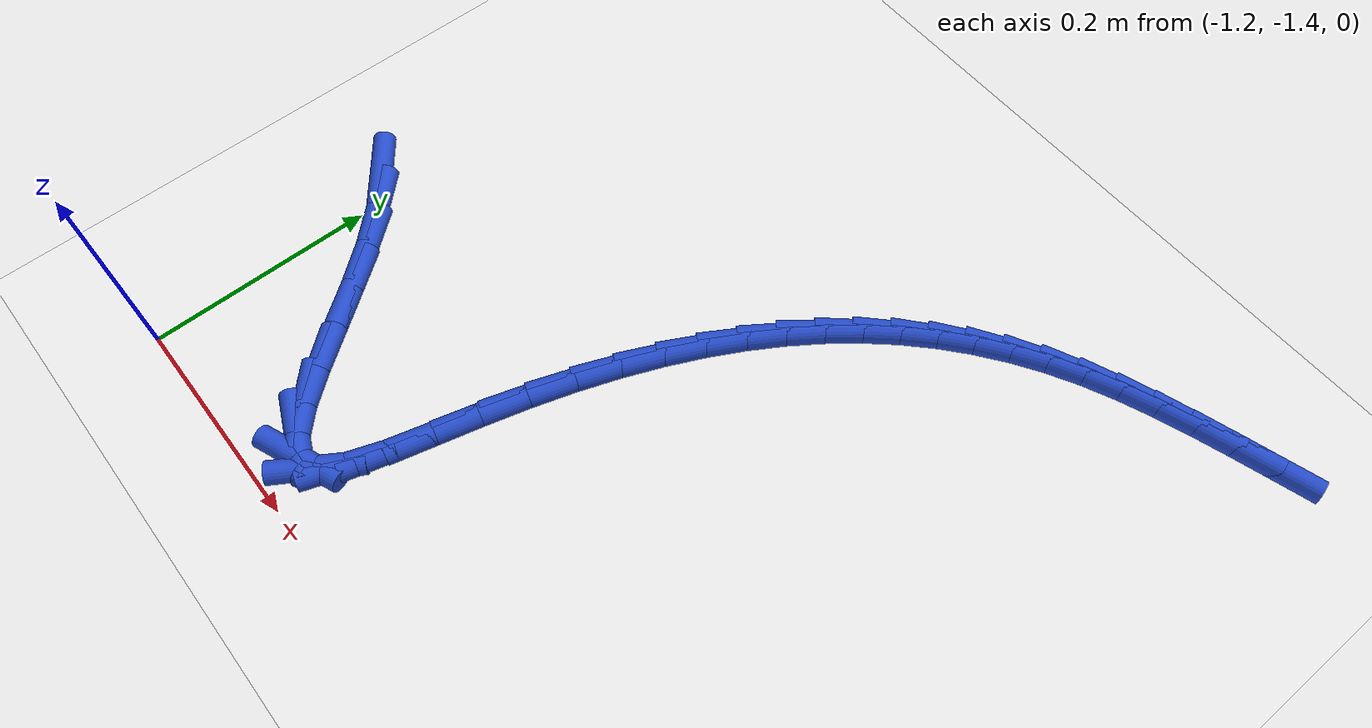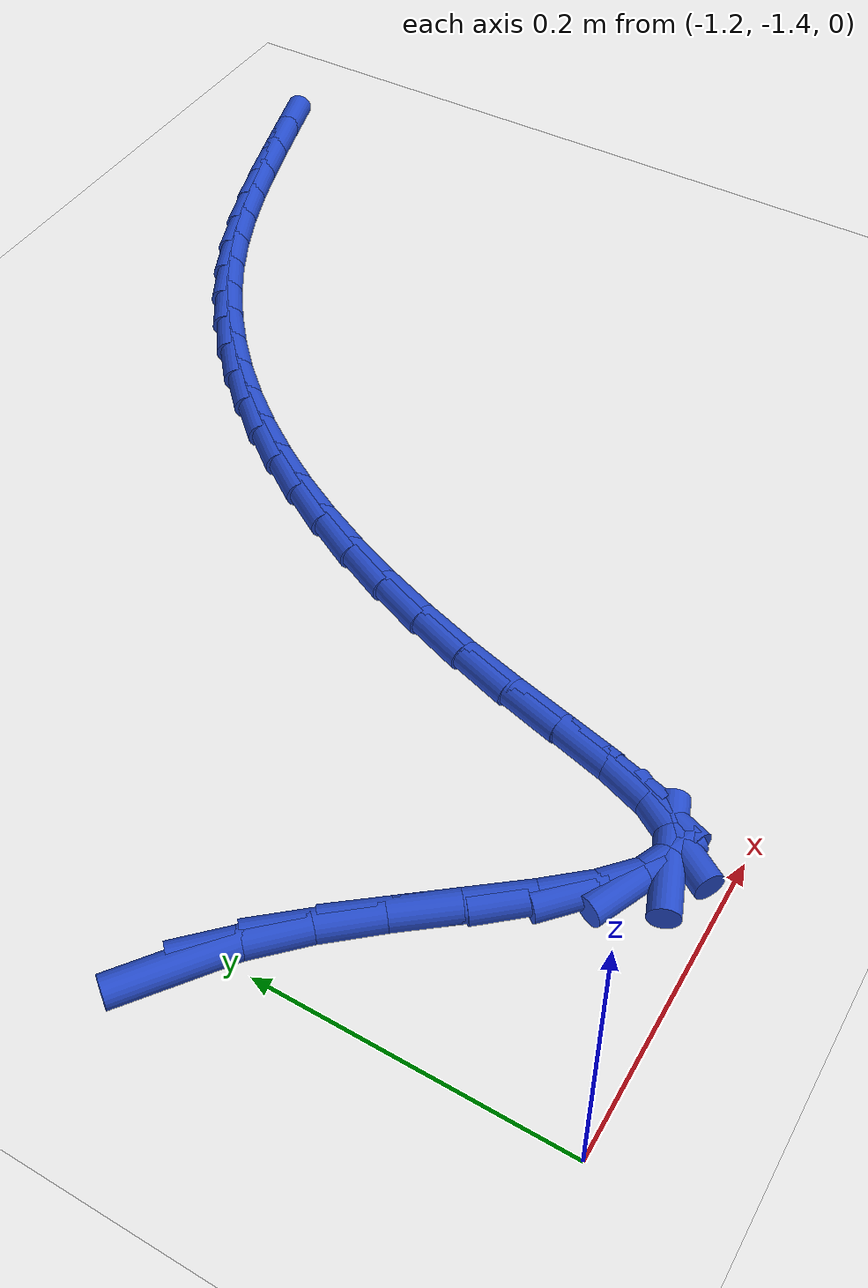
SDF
<sdf version="1.6">
 <world name="default">
  <model name="ground_plane">
   <static>1</static>
   <link name="link">
    <collision name="collision">
     <geometry><plane><normal>0 0 1</normal><size>100 100</size></plane></geometry>
     <surface><friction><ode><mu>100</mu><mu2>50</mu2></ode></friction></surface>
    </collision>
    <visual name="visual">
     <cast_shadows>0</cast_shadows>
     <geometry><plane><normal>0 0 1</normal><size>100 100</size></plane></geometry>
     <material>
      <script><uri>file://media/materials/scripts/gazebo.material</uri><name>Gazebo/WhiteGlow</name></script>
     </material>
    </visual>
   </link>
  </model>
  <model name="line">
   <link name="link_206">
    <pose>-1.220173806969599 -1.1647429994126597 0.01 0 1.57 -0.6427984619645438</pose>
    <collision name="collision">
     <geometry><cylinder><radius>0.01</radius><length>0.08</length></cylinder></geometry>
    </collision>
    <visual name="visual">
     <material>
      <script><name>Gazebo/Blue</name><uri>file://media/materials/scripts/gazebo.material</uri></script>
     </material>
     <geometry><cylinder><radius>0.01</radius><length>0.08</length></cylinder></geometry>
    </visual>
   </link>
   <link name="link_207">
    <pose>-1.1905169455982685 -1.1869531027422062 0.01 0 1.57 -0.7818668141543124</pose>
    <collision name="collision">
     <geometry><cylinder><radius>0.01</radius><length>0.08</length></cylinder></geometry>
    </collision>
    <visual name="visual">
     <material>
      <script><name>Gazebo/Blue</name><uri>file://media/materials/scripts/gazebo.material</uri></script>
     </material>
     <geometry><cylinder><radius>0.01</radius><length>0.08</length></cylinder></geometry>
    </visual>
   </link>
   <link name="link_208">
    <pose>-1.161815393976633 -1.2154526564441832 0.01 0 1.57 -0.8630017104701355</pose>
    <collision name="collision">
     <geometry><cylinder><radius>0.01</radius><length>0.08</length></cylinder></geometry>
    </collision>
    <visual name="visual">
     <material>
      <script><name>Gazebo/Blue</name><uri>file://media/materials/scripts/gazebo.material</uri></script>
     </material>
     <geometry><cylinder><radius>0.01</radius><length>0.08</length></cylinder></geometry>
    </visual>
   </link>
   <link name="link_209">
    <pose>-1.1343056274327203 -1.2476014556061399 0.01 0 1.57 -0.9013832921998496</pose>
    <collision name="collision">
     <geometry><cylinder><radius>0.01</radius><length>0.08</length></cylinder></geometry>
    </collision>
    <visual name="visual">
     <material>
      <script><name>Gazebo/Blue</name><uri>file://media/materials/scripts/gazebo.material</uri></script>
     </material>
     <geometry><cylinder><radius>0.01</radius><length>0.08</length></cylinder></geometry>
    </visual>
   </link>
   <link name="link_210">
    <pose>-1.1082363518498668 -1.2805463574093836 0.01 0 1.57 -0.902608137585877</pose>
    <collision name="collision">
     <geometry><cylinder><radius>0.01</radius><length>0.08</length></cylinder></geometry>
    </collision>
    <visual name="visual">
     <material>
      <script><name>Gazebo/Blue</name><uri>file://media/materials/scripts/gazebo.material</uri></script>
     </material>
     <geometry><cylinder><radius>0.01</radius><length>0.08</length></cylinder></geometry>
    </visual>
   </link>
   <link name="link_211">
    <pose>-1.0838562731114036 -1.3114342190352248 0.01 0 1.57 -0.858286432172695</pose>
    <collision name="collision">
     <geometry><cylinder><radius>0.01</radius><length>0.08</length></cylinder></geometry>
    </collision>
    <visual name="visual">
     <material>
      <script><name>Gazebo/Blue</name><uri>file://media/materials/scripts/gazebo.material</uri></script>
     </material>
     <geometry><cylinder><radius>0.01</radius><length>0.08</length></cylinder></geometry>
    </visual>
   </link>
   <link name="link_212">
    <pose>-1.0614140971006663 -1.3374118976649711 0.01 0 1.57 -0.7323878578274264</pose>
    <collision name="collision">
     <geometry><cylinder><radius>0.01</radius><length>0.08</length></cylinder></geometry>
    </collision>
    <visual name="visual">
     <material>
      <script><name>Gazebo/Blue</name><uri>file://media/materials/scripts/gazebo.material</uri></script>
     </material>
     <geometry><cylinder><radius>0.01</radius><length>0.08</length></cylinder></geometry>
    </visual>
   </link>
   <link name="link_213">
    <pose>-1.0411585297009873 -1.3556262504799323 0.01 0 1.57 -0.40302396959657827</pose>
    <collision name="collision">
     <geometry><cylinder><radius>0.01</radius><length>0.08</length></cylinder></geometry>
    </collision>
    <visual name="visual">
     <material>
      <script><name>Gazebo/Blue</name><uri>file://media/materials/scripts/gazebo.material</uri></script>
     </material>
     <geometry><cylinder><radius>0.01</radius><length>0.08</length></cylinder></geometry>
    </visual>
   </link>
   <link name="link_214">
    <pose>-1.0233382767957016 -1.3632241346614167 0.01 0 1.57 0.3676178336418724</pose>
    <collision name="collision">
     <geometry><cylinder><radius>0.01</radius><length>0.08</length></cylinder></geometry>
    </collision>
    <visual name="visual">
     <material>
      <script><name>Gazebo/Blue</name><uri>file://media/materials/scripts/gazebo.material</uri></script>
     </material>
     <geometry><cylinder><radius>0.01</radius><length>0.08</length></cylinder></geometry>
    </visual>
   </link>
   <link name="link_215">
    <pose>-1.0081953916342898 -1.357392228712328 0.01 0 1.57 0.9997028247715916</pose>
    <collision name="collision">
     <geometry><cylinder><radius>0.01</radius><length>0.08</length></cylinder></geometry>
    </collision>
    <visual name="visual">
     <material>
      <script><name>Gazebo/Blue</name><uri>file://media/materials/scripts/gazebo.material</uri></script>
     </material>
     <geometry><cylinder><radius>0.01</radius><length>0.08</length></cylinder></geometry>
    </visual>
   </link>
   <link name="link_216">
    <pose>-0.9955674642654324 -1.3377382461043865 0.01 0 1.57 1.2231740796199226</pose>
    <collision name="collision">
     <geometry><cylinder><radius>0.01</radius><length>0.08</length></cylinder></geometry>
    </collision>
    <visual name="visual">
     <material>
      <script><name>Gazebo/Blue</name><uri>file://media/materials/scripts/gazebo.material</uri></script>
     </material>
     <geometry><cylinder><radius>0.01</radius><length>0.08</length></cylinder></geometry>
    </visual>
   </link>
   <link name="link_217">
    <pose>-0.9846620971260498 -1.3076408788185623 0.01 0 1.57 1.3049560181873343</pose>
    <collision name="collision">
     <geometry><cylinder><radius>0.01</radius><length>0.08</length></cylinder></geometry>
    </collision>
    <visual name="visual">
     <material>
      <script><name>Gazebo/Blue</name><uri>file://media/materials/scripts/gazebo.material</uri></script>
     </material>
     <geometry><cylinder><radius>0.01</radius><length>0.08</length></cylinder></geometry>
    </visual>
   </link>
   <link name="link_218">
    <pose>-0.9746323398039507 -1.2708053611642285 0.01 0 1.57 1.325015432899213</pose>
    <collision name="collision">
     <geometry><cylinder><radius>0.01</radius><length>0.08</length></cylinder></geometry>
    </collision>
    <visual name="visual">
     <material>
      <script><name>Gazebo/Blue</name><uri>file://media/materials/scripts/gazebo.material</uri></script>
     </material>
     <geometry><cylinder><radius>0.01</radius><length>0.08</length></cylinder></geometry>
    </visual>
   </link>
   <link name="link_219">
    <pose>-0.964631241886945 -1.2309369274507616 0.01 0 1.57 1.3037829737104314</pose>
    <collision name="collision">
     <geometry><cylinder><radius>0.01</radius><length>0.08</length></cylinder></geometry>
    </collision>
    <visual name="visual">
     <material>
      <script><name>Gazebo/Blue</name><uri>file://media/materials/scripts/gazebo.material</uri></script>
     </material>
     <geometry><cylinder><radius>0.01</radius><length>0.08</length></cylinder></geometry>
    </visual>
   </link>
   <link name="link_220">
    <pose>-0.9538557594840679 -1.191544989284258 0.01 0 1.57 1.2647890023544857</pose>
    <collision name="collision">
     <geometry><cylinder><radius>0.01</radius><length>0.08</length></cylinder></geometry>
    </collision>
    <visual name="visual">
     <material>
      <script><name>Gazebo/Blue</name><uri>file://media/materials/scripts/gazebo.material</uri></script>
     </material>
     <geometry><cylinder><radius>0.01</radius><length>0.08</length></cylinder></geometry>
    </visual>
   </link>
   <link name="link_221">
    <pose>-0.9419872960657527 -1.1539783272471251 0.01 0 1.57 1.222386026849584</pose>
    <collision name="collision">
     <geometry><cylinder><radius>0.01</radius><length>0.08</length></cylinder></geometry>
    </collision>
    <visual name="visual">
     <material>
      <script><name>Gazebo/Blue</name><uri>file://media/materials/scripts/gazebo.material</uri></script>
     </material>
     <geometry><cylinder><radius>0.01</radius><length>0.08</length></cylinder></geometry>
    </visual>
   </link>
   <link name="link_222">
    <pose>-0.9290078982277986 -1.118244856194156 0.01 0 1.57 1.176668746838657</pose>
    <collision name="collision">
     <geometry><cylinder><radius>0.01</radius><length>0.08</length></cylinder></geometry>
    </collision>
    <visual name="visual">
     <material>
      <script><name>Gazebo/Blue</name><uri>file://media/materials/scripts/gazebo.material</uri></script>
     </material>
     <geometry><cylinder><radius>0.01</radius><length>0.08</length></cylinder></geometry>
    </visual>
   </link>
   <link name="link_223">
    <pose>-0.9149041146439787 -1.0843324117514965 0.01 0 1.57 1.1275406758366595</pose>
    <collision name="collision">
     <geometry><cylinder><radius>0.01</radius><length>0.08</length></cylinder></geometry>
    </collision>
    <visual name="visual">
     <material>
      <script><name>Gazebo/Blue</name><uri>file://media/materials/scripts/gazebo.material</uri></script>
     </material>
     <geometry><cylinder><radius>0.01</radius><length>0.08</length></cylinder></geometry>
    </visual>
   </link>
   <link name="link_224">
    <pose>-0.8996624939880643 -1.0522288295452886 0.01 0 1.57 1.0749686772093139</pose>
    <collision name="collision">
     <geometry><cylinder><radius>0.01</radius><length>0.08</length></cylinder></geometry>
    </collision>
    <visual name="visual">
     <material>
      <script><name>Gazebo/Blue</name><uri>file://media/materials/scripts/gazebo.material</uri></script>
     </material>
     <geometry><cylinder><radius>0.01</radius><length>0.08</length></cylinder></geometry>
    </visual>
   </link>
   <link name="link_225">
    <pose>-0.8832695849338293 -1.0219219452016792 0.01 0 1.57 1.0190031984612598</pose>
    <collision name="collision">
     <geometry><cylinder><radius>0.01</radius><length>0.08</length></cylinder></geometry>
    </collision>
    <visual name="visual">
     <material>
      <script><name>Gazebo/Blue</name><uri>file://media/materials/scripts/gazebo.material</uri></script>
     </material>
     <geometry><cylinder><radius>0.01</radius><length>0.08</length></cylinder></geometry>
    </visual>
   </link>
   <link name="link_226">
    <pose>-0.8657119361550454 -0.9933995943468106 0.01 0 1.57 0.9597981288085226</pose>
    <collision name="collision">
     <geometry><cylinder><radius>0.01</radius><length>0.08</length></cylinder></geometry>
    </collision>
    <visual name="visual">
     <material>
      <script><name>Gazebo/Blue</name><uri>file://media/materials/scripts/gazebo.material</uri></script>
     </material>
     <geometry><cylinder><radius>0.01</radius><length>0.08</length></cylinder></geometry>
    </visual>
   </link>
   <link name="link_227">
    <pose>-0.8469760963254843 -0.9666496126068265 0.01 0 1.57 0.8976272528532</pose>
    <collision name="collision">
     <geometry><cylinder><radius>0.01</radius><length>0.08</length></cylinder></geometry>
    </collision>
    <visual name="visual">
     <material>
      <script><name>Gazebo/Blue</name><uri>file://media/materials/scripts/gazebo.material</uri></script>
     </material>
     <geometry><cylinder><radius>0.01</radius><length>0.08</length></cylinder></geometry>
    </visual>
   </link>
   <link name="link_228">
    <pose>-0.8270486141189198 -0.9416598356078724 0.01 0 1.57 0.8328935364433663</pose>
    <collision name="collision">
     <geometry><cylinder><radius>0.01</radius><length>0.08</length></cylinder></geometry>
    </collision>
    <visual name="visual">
     <material>
      <script><name>Gazebo/Blue</name><uri>file://media/materials/scripts/gazebo.material</uri></script>
     </material>
     <geometry><cylinder><radius>0.01</radius><length>0.08</length></cylinder></geometry>
    </visual>
   </link>
   <link name="link_229">
    <pose>-0.8059160382091235 -0.9184180989760921 0.01 0 1.57 0.7661274421656883</pose>
    <collision name="collision">
     <geometry><cylinder><radius>0.01</radius><length>0.08</length></cylinder></geometry>
    </collision>
    <visual name="visual">
     <material>
      <script><name>Gazebo/Blue</name><uri>file://media/materials/scripts/gazebo.material</uri></script>
     </material>
     <geometry><cylinder><radius>0.01</radius><length>0.08</length></cylinder></geometry>
    </visual>
   </link>
   <link name="link_230">
    <pose>-0.7835649172698682 -0.8969122383376293 0.01 0 1.57 0.6979715306894901</pose>
    <collision name="collision">
     <geometry><cylinder><radius>0.01</radius><length>0.08</length></cylinder></geometry>
    </collision>
    <visual name="visual">
     <material>
      <script><name>Gazebo/Blue</name><uri>file://media/materials/scripts/gazebo.material</uri></script>
     </material>
     <geometry><cylinder><radius>0.01</radius><length>0.08</length></cylinder></geometry>
    </visual>
   </link>
   <link name="link_231">
    <pose>-0.7599817999749258 -0.8771300893186285 0.01 0 1.57 0.6291508641558153</pose>
    <collision name="collision">
     <geometry><cylinder><radius>0.01</radius><length>0.08</length></cylinder></geometry>
    </collision>
    <visual name="visual">
     <material>
      <script><name>Gazebo/Blue</name><uri>file://media/materials/scripts/gazebo.material</uri></script>
     </material>
     <geometry><cylinder><radius>0.01</radius><length>0.08</length></cylinder></geometry>
    </visual>
   </link>
   <link name="link_232">
    <pose>-0.7351532349980698 -0.8590594875452341 0.01 0 1.57 0.5604317712109379</pose>
    <collision name="collision">
     <geometry><cylinder><radius>0.01</radius><length>0.08</length></cylinder></geometry>
    </collision>
    <visual name="visual">
     <material>
      <script><name>Gazebo/Blue</name><uri>file://media/materials/scripts/gazebo.material</uri></script>
     </material>
     <geometry><cylinder><radius>0.01</radius><length>0.08</length></cylinder></geometry>
    </visual>
   </link>
   <link name="link_233">
    <pose>-0.7090657710130712 -0.8426882686435893 0.01 0 1.57 0.49257442969544285</pose>
    <collision name="collision">
     <geometry><cylinder><radius>0.01</radius><length>0.08</length></cylinder></geometry>
    </collision>
    <visual name="visual">
     <material>
      <script><name>Gazebo/Blue</name><uri>file://media/materials/scripts/gazebo.material</uri></script>
     </material>
     <geometry><cylinder><radius>0.01</radius><length>0.08</length></cylinder></geometry>
    </visual>
   </link>
   <link name="link_234">
    <pose>-0.6817059566937039 -0.8280042682398394 0.01 0 1.57 0.42756695973820785</pose>
    <collision name="collision">
     <geometry><cylinder><radius>0.01</radius><length>0.08</length></cylinder></geometry>
    </collision>
    <visual name="visual">
     <material>
      <script><name>Gazebo/Blue</name><uri>file://media/materials/scripts/gazebo.material</uri></script>
     </material>
     <geometry><cylinder><radius>0.01</radius><length>0.08</length></cylinder></geometry>
    </visual>
   </link>
   <link name="link_235">
    <pose>-0.6530849833090677 -0.8149622770996582 0.01 0 1.57 0.3736607308931987</pose>
    <collision name="collision">
     <geometry><cylinder><radius>0.01</radius><length>0.08</length></cylinder></geometry>
    </collision>
    <visual name="visual">
     <material>
      <script><name>Gazebo/Blue</name><uri>file://media/materials/scripts/gazebo.material</uri></script>
     </material>
     <geometry><cylinder><radius>0.01</radius><length>0.08</length></cylinder></geometry>
    </visual>
   </link>
   <link name="link_236">
    <pose>-0.6233678902268056 -0.8033107810568559 0.01 0 1.57 0.33334685178390167</pose>
    <collision name="collision">
     <geometry><cylinder><radius>0.01</radius><length>0.08</length></cylinder></geometry>
    </collision>
    <visual name="visual">
     <material>
      <script><name>Gazebo/Blue</name><uri>file://media/materials/scripts/gazebo.material</uri></script>
     </material>
     <geometry><cylinder><radius>0.01</radius><length>0.08</length></cylinder></geometry>
    </visual>
   </link>
   <link name="link_237">
    <pose>-0.592778978138994 -0.7927187985770149 0.01 0 1.57 0.30586493901537004</pose>
    <collision name="collision">
     <geometry><cylinder><radius>0.01</radius><length>0.08</length></cylinder></geometry>
    </collision>
    <visual name="visual">
     <material>
      <script><name>Gazebo/Blue</name><uri>file://media/materials/scripts/gazebo.material</uri></script>
     </material>
     <geometry><cylinder><radius>0.01</radius><length>0.08</length></cylinder></geometry>
    </visual>
   </link>
   <link name="link_238">
    <pose>-0.5615426726032384 -0.782855180685393 0.01 0 1.57 0.29054721551988894</pose>
    <collision name="collision">
     <geometry><cylinder><radius>0.01</radius><length>0.08</length></cylinder></geometry>
    </collision>
    <visual name="visual">
     <material>
      <script><name>Gazebo/Blue</name><uri>file://media/materials/scripts/gazebo.material</uri></script>
     </material>
     <geometry><cylinder><radius>0.01</radius><length>0.08</length></cylinder></geometry>
    </visual>
   </link>
   <link name="link_239">
    <pose>-0.5298833991771474 -0.7733887784072487 0.01 0 1.57 0.28692918637878706</pose>
    <collision name="collision">
     <geometry><cylinder><radius>0.01</radius><length>0.08</length></cylinder></geometry>
    </collision>
    <visual name="visual">
     <material>
      <script><name>Gazebo/Blue</name><uri>file://media/materials/scripts/gazebo.material</uri></script>
     </material>
     <geometry><cylinder><radius>0.01</radius><length>0.08</length></cylinder></geometry>
    </visual>
   </link>
  </model>
 </world>
</sdf>
